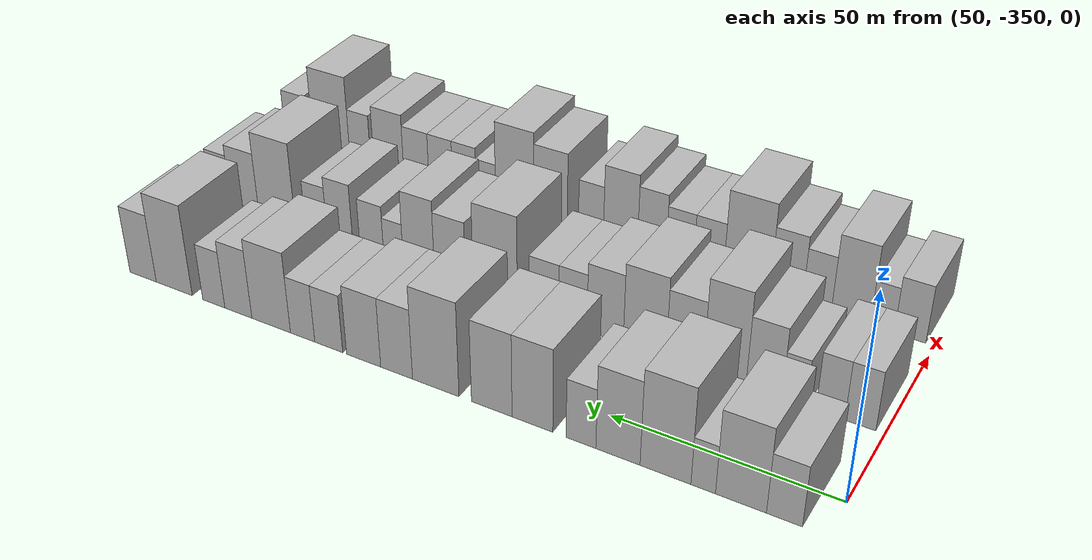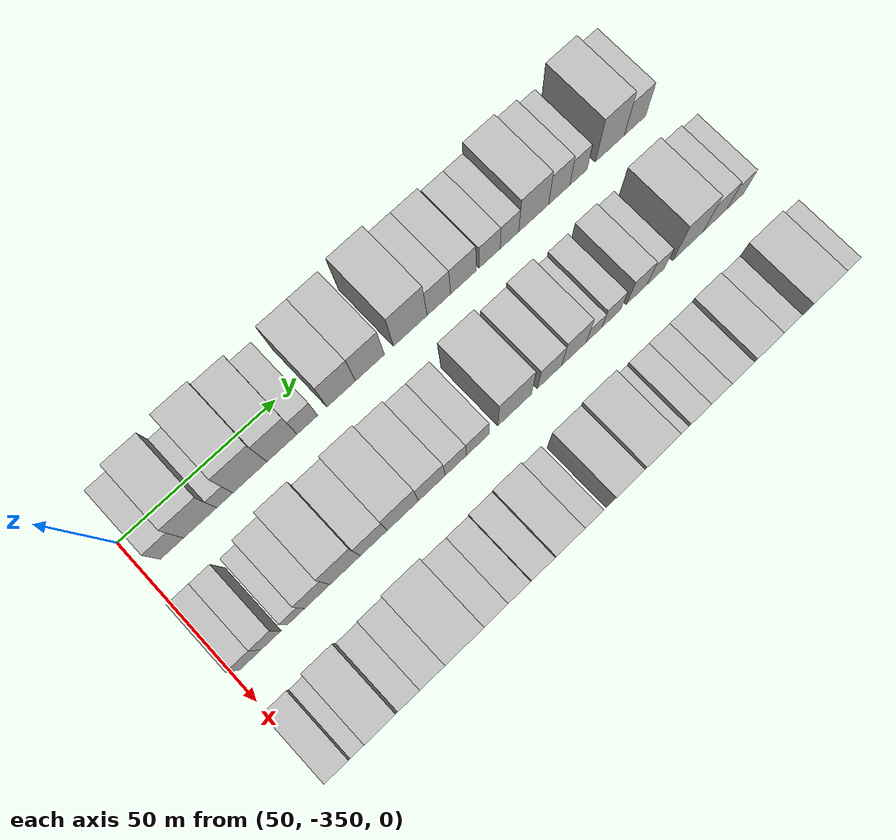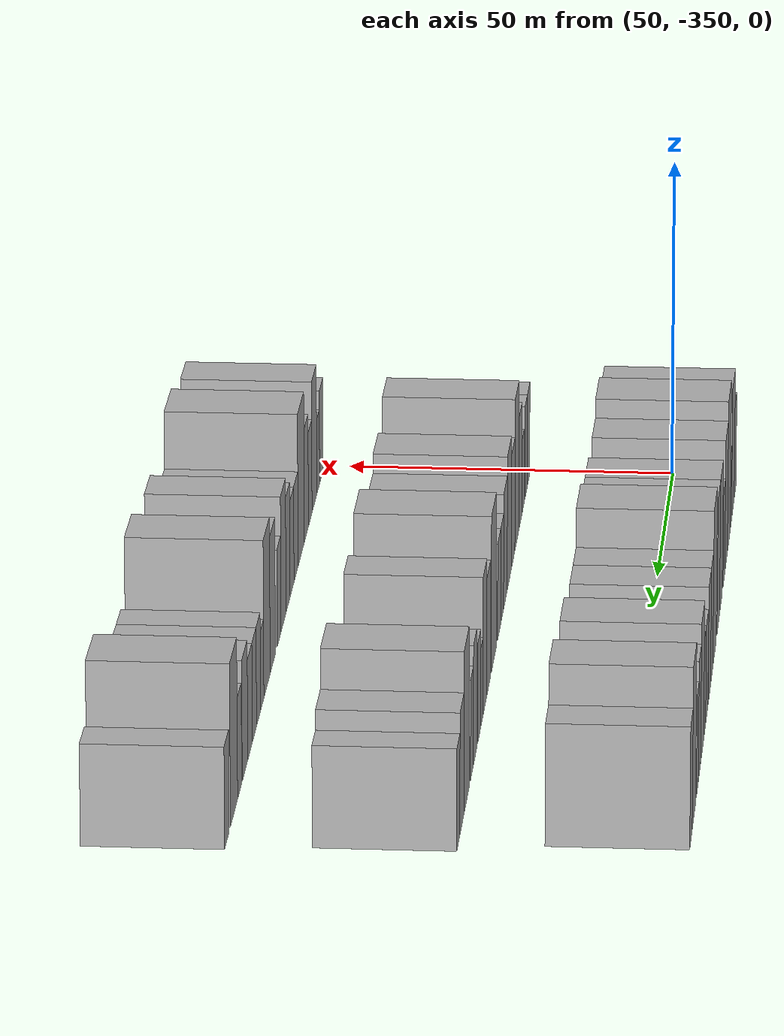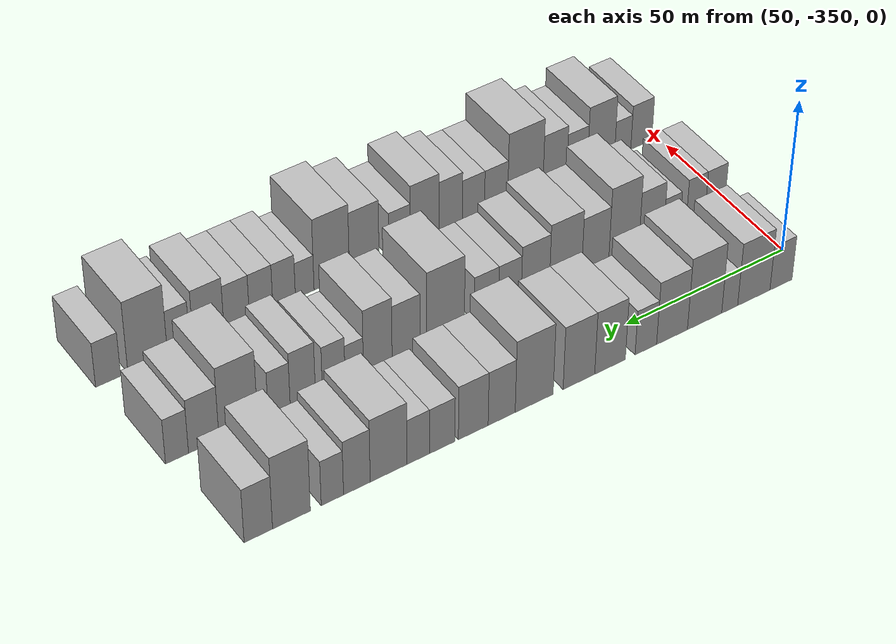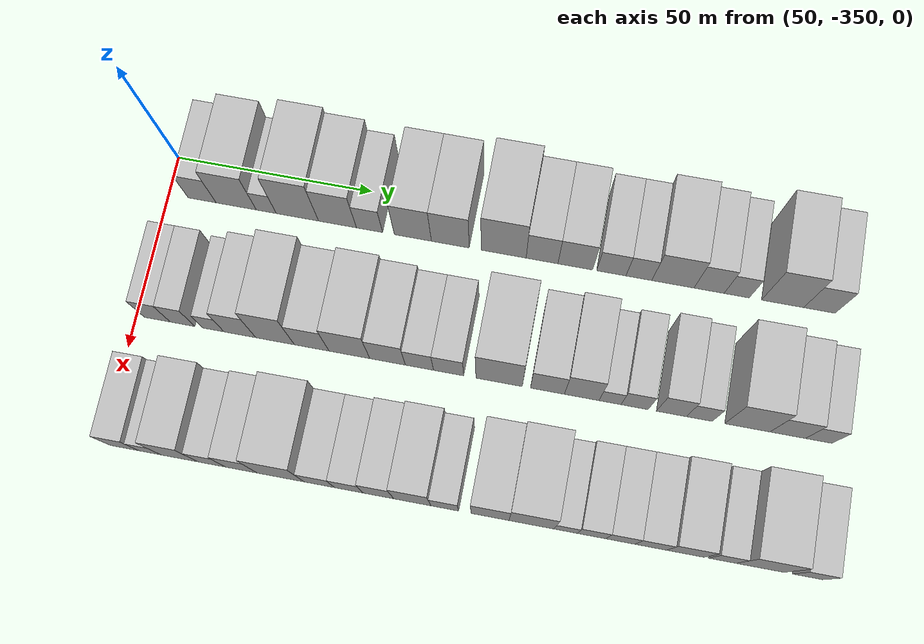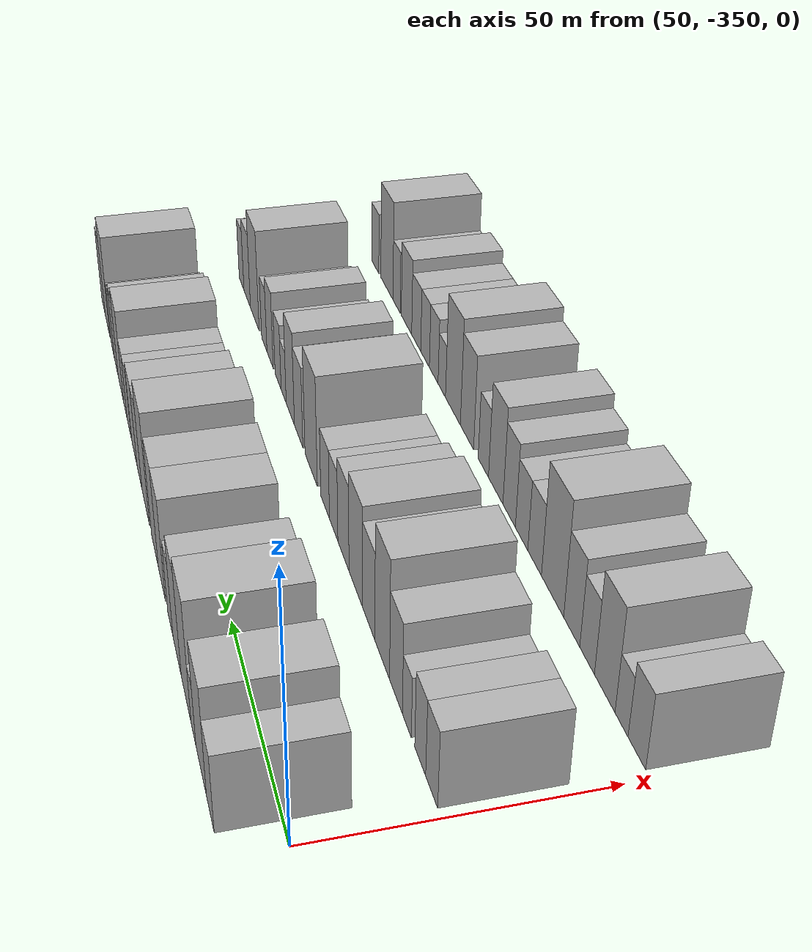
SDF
<sdf version="1.6">
 <world name="default">
  <model name="building_1">
   <static>1</static>
   <pose>50.0000 -341.4122 0 0.000000 0.000000 0.000000</pose>
   <link name="link">
    <pose>0 0 7.50 0 0 0</pose>
    <collision name="collision"><geometry><box><size>20.0000 7.1757 15.0000</size></box></geometry></collision>
    <visual name="visual">
     <cast_shadows>0</cast_shadows>
     <geometry><box><size>20.0000 7.1757 15.0000</size></box></geometry>
     <material>
      <script>
       <uri>model://HANNAS_wall/materials/scripts</uri>
       <uri>model://HANNAS_wall/materials/textures</uri>
       <name>vrc/HANNAS_wall</name>
      </script>
     </material>
    </visual>
   </link>
  </model>
  <model name="building_2">
   <static>1</static>
   <pose>50.0000 -332.6353 0 0.000000 0.000000 0.000000</pose>
   <link name="link">
    <pose>0 0 10.50 0 0 0</pose>
    <collision name="collision"><geometry><box><size>20.0000 10.3781 21.0000</size></box></geometry></collision>
    <visual name="visual">
     <cast_shadows>0</cast_shadows>
     <geometry><box><size>20.0000 10.3781 21.0000</size></box></geometry>
     <material>
      <script>
       <uri>model://HANNAS_wall/materials/scripts</uri>
       <uri>model://HANNAS_wall/materials/textures</uri>
       <name>vrc/HANNAS_wall</name>
      </script>
     </material>
    </visual>
   </link>
  </model>
  <model name="building_3">
   <static>1</static>
   <pose>50.0000 -324.8922 0 0.000000 0.000000 0.000000</pose>
   <link name="link">
    <pose>0 0 6.00 0 0 0</pose>
    <collision name="collision"><geometry><box><size>20.0000 5.1081 12.0000</size></box></geometry></collision>
    <visual name="visual">
     <cast_shadows>0</cast_shadows>
     <geometry><box><size>20.0000 5.1081 12.0000</size></box></geometry>
     <material>
      <script>
       <uri>model://HANNAS_wall/materials/scripts</uri>
       <uri>model://HANNAS_wall/materials/textures</uri>
       <name>vrc/HANNAS_wall</name>
      </script>
     </material>
    </visual>
   </link>
  </model>
  <model name="building_4">
   <static>1</static>
   <pose>50.0000 -316.9242 0 0.000000 0.000000 0.000000</pose>
   <link name="link">
    <pose>0 0 12.00 0 0 0</pose>
    <collision name="collision"><geometry><box><size>20.0000 10.8280 24.0000</size></box></geometry></collision>
    <visual name="visual">
     <cast_shadows>0</cast_shadows>
     <geometry><box><size>20.0000 10.8280 24.0000</size></box></geometry>
     <material>
      <script>
       <uri>model://HANNAS_wall/materials/scripts</uri>
       <uri>model://HANNAS_wall/materials/textures</uri>
       <name>vrc/HANNAS_wall</name>
      </script>
     </material>
    </visual>
   </link>
  </model>
  <model name="building_5">
   <static>1</static>
   <pose>50.0000 -306.6787 0 0.000000 0.000000 0.000000</pose>
   <link name="link">
    <pose>0 0 10.50 0 0 0</pose>
    <collision name="collision"><geometry><box><size>20.0000 9.6630 21.0000</size></box></geometry></collision>
    <visual name="visual">
     <cast_shadows>0</cast_shadows>
     <geometry><box><size>20.0000 9.6630 21.0000</size></box></geometry>
     <material>
      <script>
       <uri>model://HANNAS_wall/materials/scripts</uri>
       <uri>model://HANNAS_wall/materials/textures</uri>
       <name>vrc/HANNAS_wall</name>
      </script>
     </material>
    </visual>
   </link>
  </model>
  <model name="building_6">
   <static>1</static>
   <pose>50.0000 -298.5172 0 0.000000 0.000000 0.000000</pose>
   <link name="link">
    <pose>0 0 7.50 0 0 0</pose>
    <collision name="collision"><geometry><box><size>20.0000 6.6600 15.0000</size></box></geometry></collision>
    <visual name="visual">
     <cast_shadows>0</cast_shadows>
     <geometry><box><size>20.0000 6.6600 15.0000</size></box></geometry>
     <material>
      <script>
       <uri>model://HANNAS_wall/materials/scripts</uri>
       <uri>model://HANNAS_wall/materials/textures</uri>
       <name>vrc/HANNAS_wall</name>
      </script>
     </material>
    </visual>
   </link>
  </model>
  <model name="building_7">
   <static>1</static>
   <pose>50.0000 -287.5001 0 0.000000 0.000000 0.000000</pose>
   <link name="link">
    <pose>0 0 10.50 0 0 0</pose>
    <collision name="collision"><geometry><box><size>20.0000 9.3741 21.0000</size></box></geometry></collision>
    <visual name="visual">
     <cast_shadows>0</cast_shadows>
     <geometry><box><size>20.0000 9.3741 21.0000</size></box></geometry>
     <material>
      <script>
       <uri>model://HANNAS_wall/materials/scripts</uri>
       <uri>model://HANNAS_wall/materials/textures</uri>
       <name>vrc/HANNAS_wall</name>
      </script>
     </material>
    </visual>
   </link>
  </model>
  <model name="building_8">
   <static>1</static>
   <pose>50.0000 -278.0245 0 0.000000 0.000000 0.000000</pose>
   <link name="link">
    <pose>0 0 10.50 0 0 0</pose>
    <collision name="collision"><geometry><box><size>20.0000 9.5772 21.0000</size></box></geometry></collision>
    <visual name="visual">
     <cast_shadows>0</cast_shadows>
     <geometry><box><size>20.0000 9.5772 21.0000</size></box></geometry>
     <material>
      <script>
       <uri>model://HANNAS_wall/materials/scripts</uri>
       <uri>model://HANNAS_wall/materials/textures</uri>
       <name>vrc/HANNAS_wall</name>
      </script>
     </material>
    </visual>
   </link>
  </model>
  <model name="building_9">
   <static>1</static>
   <pose>50.0000 -264.5718 0 0.000000 0.000000 0.000000</pose>
   <link name="link">
    <pose>0 0 12.00 0 0 0</pose>
    <collision name="collision"><geometry><box><size>20.0000 11.3282 24.0000</size></box></geometry></collision>
    <visual name="visual">
     <cast_shadows>0</cast_shadows>
     <geometry><box><size>20.0000 11.3282 24.0000</size></box></geometry>
     <material>
      <script>
       <uri>model://HANNAS_wall/materials/scripts</uri>
       <uri>model://HANNAS_wall/materials/textures</uri>
       <name>vrc/HANNAS_wall</name>
      </script>
     </material>
    </visual>
   </link>
  </model>
  <model name="building_10">
   <static>1</static>
   <pose>50.0000 -254.9156 0 0.000000 0.000000 0.000000</pose>
   <link name="link">
    <pose>0 0 9.00 0 0 0</pose>
    <collision name="collision"><geometry><box><size>20.0000 7.9842 18.0000</size></box></geometry></collision>
    <visual name="visual">
     <cast_shadows>0</cast_shadows>
     <geometry><box><size>20.0000 7.9842 18.0000</size></box></geometry>
     <material>
      <script>
       <uri>model://HANNAS_wall/materials/scripts</uri>
       <uri>model://HANNAS_wall/materials/textures</uri>
       <name>vrc/HANNAS_wall</name>
      </script>
     </material>
    </visual>
   </link>
  </model>
  <model name="building_11">
   <static>1</static>
   <pose>50.0000 -246.5687 0 0.000000 0.000000 0.000000</pose>
   <link name="link">
    <pose>0 0 9.00 0 0 0</pose>
    <collision name="collision"><geometry><box><size>20.0000 8.7096 18.0000</size></box></geometry></collision>
    <visual name="visual">
     <cast_shadows>0</cast_shadows>
     <geometry><box><size>20.0000 8.7096 18.0000</size></box></geometry>
     <material>
      <script>
       <uri>model://HANNAS_wall/materials/scripts</uri>
       <uri>model://HANNAS_wall/materials/textures</uri>
       <name>vrc/HANNAS_wall</name>
      </script>
     </material>
    </visual>
   </link>
  </model>
  <model name="building_12">
   <static>1</static>
   <pose>50.0000 -237.5561 0 0.000000 0.000000 0.000000</pose>
   <link name="link">
    <pose>0 0 7.50 0 0 0</pose>
    <collision name="collision"><geometry><box><size>20.0000 7.3157 15.0000</size></box></geometry></collision>
    <visual name="visual">
     <cast_shadows>0</cast_shadows>
     <geometry><box><size>20.0000 7.3157 15.0000</size></box></geometry>
     <material>
      <script>
       <uri>model://HANNAS_wall/materials/scripts</uri>
       <uri>model://HANNAS_wall/materials/textures</uri>
       <name>vrc/HANNAS_wall</name>
      </script>
     </material>
    </visual>
   </link>
  </model>
  <model name="building_13">
   <static>1</static>
   <pose>50.0000 -230.6666 0 0.000000 0.000000 0.000000</pose>
   <link name="link">
    <pose>0 0 7.50 0 0 0</pose>
    <collision name="collision"><geometry><box><size>20.0000 6.4633 15.0000</size></box></geometry></collision>
    <visual name="visual">
     <cast_shadows>0</cast_shadows>
     <geometry><box><size>20.0000 6.4633 15.0000</size></box></geometry>
     <material>
      <script>
       <uri>model://HANNAS_wall/materials/scripts</uri>
       <uri>model://HANNAS_wall/materials/textures</uri>
       <name>vrc/HANNAS_wall</name>
      </script>
     </material>
    </visual>
   </link>
  </model>
  <model name="building_14">
   <static>1</static>
   <pose>50.0000 -222.1933 0 0.000000 0.000000 0.000000</pose>
   <link name="link">
    <pose>0 0 10.50 0 0 0</pose>
    <collision name="collision"><geometry><box><size>20.0000 10.4833 21.0000</size></box></geometry></collision>
    <visual name="visual">
     <cast_shadows>0</cast_shadows>
     <geometry><box><size>20.0000 10.4833 21.0000</size></box></geometry>
     <material>
      <script>
       <uri>model://HANNAS_wall/materials/scripts</uri>
       <uri>model://HANNAS_wall/materials/textures</uri>
       <name>vrc/HANNAS_wall</name>
      </script>
     </material>
    </visual>
   </link>
  </model>
  <model name="building_15">
   <static>1</static>
   <pose>50.0000 -213.2022 0 0.000000 0.000000 0.000000</pose>
   <link name="link">
    <pose>0 0 9.00 0 0 0</pose>
    <collision name="collision"><geometry><box><size>20.0000 7.4988 18.0000</size></box></geometry></collision>
    <visual name="visual">
     <cast_shadows>0</cast_shadows>
     <geometry><box><size>20.0000 7.4988 18.0000</size></box></geometry>
     <material>
      <script>
       <uri>model://HANNAS_wall/materials/scripts</uri>
       <uri>model://HANNAS_wall/materials/textures</uri>
       <name>vrc/HANNAS_wall</name>
      </script>
     </material>
    </visual>
   </link>
  </model>
  <model name="building_16">
   <static>1</static>
   <pose>50.0000 -206.3349 0 0.000000 0.000000 0.000000</pose>
   <link name="link">
    <pose>0 0 7.50 0 0 0</pose>
    <collision name="collision"><geometry><box><size>20.0000 6.2358 15.0000</size></box></geometry></collision>
    <visual name="visual">
     <cast_shadows>0</cast_shadows>
     <geometry><box><size>20.0000 6.2358 15.0000</size></box></geometry>
     <material>
      <script>
       <uri>model://HANNAS_wall/materials/scripts</uri>
       <uri>model://HANNAS_wall/materials/textures</uri>
       <name>vrc/HANNAS_wall</name>
      </script>
     </material>
    </visual>
   </link>
  </model>
  <model name="building_17">
   <static>1</static>
   <pose>50.0000 -195.0104 0 0.000000 0.000000 0.000000</pose>
   <link name="link">
    <pose>0 0 12.00 0 0 0</pose>
    <collision name="collision"><geometry><box><size>20.0000 10.4131 24.0000</size></box></geometry></collision>
    <visual name="visual">
     <cast_shadows>0</cast_shadows>
     <geometry><box><size>20.0000 10.4131 24.0000</size></box></geometry>
     <material>
      <script>
       <uri>model://HANNAS_wall/materials/scripts</uri>
       <uri>model://HANNAS_wall/materials/textures</uri>
       <name>vrc/HANNAS_wall</name>
      </script>
     </material>
    </visual>
   </link>
  </model>
  <model name="building_18">
   <static>1</static>
   <pose>50.0000 -185.9215 0 0.000000 0.000000 0.000000</pose>
   <link name="link">
    <pose>0 0 9.00 0 0 0</pose>
    <collision name="collision"><geometry><box><size>20.0000 7.7647 18.0000</size></box></geometry></collision>
    <visual name="visual">
     <cast_shadows>0</cast_shadows>
     <geometry><box><size>20.0000 7.7647 18.0000</size></box></geometry>
     <material>
      <script>
       <uri>model://HANNAS_wall/materials/scripts</uri>
       <uri>model://HANNAS_wall/materials/textures</uri>
       <name>vrc/HANNAS_wall</name>
      </script>
     </material>
    </visual>
   </link>
  </model>
  <model name="building_76">
   <static>1</static>
   <pose>82.0000 -344.7429 0 0.000000 0.000000 0.000000</pose>
   <link name="link">
    <pose>0 0 7.50 0 0 0</pose>
    <collision name="collision"><geometry><box><size>20.0000 6.5141 15.0000</size></box></geometry></collision>
    <visual name="visual">
     <cast_shadows>0</cast_shadows>
     <geometry><box><size>20.0000 6.5141 15.0000</size></box></geometry>
     <material>
      <script>
       <uri>model://HANNAS_wall/materials/scripts</uri>
       <uri>model://HANNAS_wall/materials/textures</uri>
       <name>vrc/HANNAS_wall</name>
      </script>
     </material>
    </visual>
   </link>
  </model>
  <model name="building_77">
   <static>1</static>
   <pose>82.0000 -338.4000 0 0.000000 0.000000 0.000000</pose>
   <link name="link">
    <pose>0 0 7.50 0 0 0</pose>
    <collision name="collision"><geometry><box><size>20.0000 6.1718 15.0000</size></box></geometry></collision>
    <visual name="visual">
     <cast_shadows>0</cast_shadows>
     <geometry><box><size>20.0000 6.1718 15.0000</size></box></geometry>
     <material>
      <script>
       <uri>model://HANNAS_wall/materials/scripts</uri>
       <uri>model://HANNAS_wall/materials/textures</uri>
       <name>vrc/HANNAS_wall</name>
      </script>
     </material>
    </visual>
   </link>
  </model>
  <model name="building_78">
   <static>1</static>
   <pose>82.0000 -330.6525 0 0.000000 0.000000 0.000000</pose>
   <link name="link">
    <pose>0 0 6.00 0 0 0</pose>
    <collision name="collision"><geometry><box><size>20.0000 5.3231 12.0000</size></box></geometry></collision>
    <visual name="visual">
     <cast_shadows>0</cast_shadows>
     <geometry><box><size>20.0000 5.3231 12.0000</size></box></geometry>
     <material>
      <script>
       <uri>model://HANNAS_wall/materials/scripts</uri>
       <uri>model://HANNAS_wall/materials/textures</uri>
       <name>vrc/HANNAS_wall</name>
      </script>
     </material>
    </visual>
   </link>
  </model>
  <model name="building_79">
   <static>1</static>
   <pose>82.0000 -324.0066 0 0.000000 0.000000 0.000000</pose>
   <link name="link">
    <pose>0 0 9.00 0 0 0</pose>
    <collision name="collision"><geometry><box><size>20.0000 7.9687 18.0000</size></box></geometry></collision>
    <visual name="visual">
     <cast_shadows>0</cast_shadows>
     <geometry><box><size>20.0000 7.9687 18.0000</size></box></geometry>
     <material>
      <script>
       <uri>model://HANNAS_wall/materials/scripts</uri>
       <uri>model://HANNAS_wall/materials/textures</uri>
       <name>vrc/HANNAS_wall</name>
      </script>
     </material>
    </visual>
   </link>
  </model>
  <model name="building_80">
   <static>1</static>
   <pose>82.0000 -315.2025 0 0.000000 0.000000 0.000000</pose>
   <link name="link">
    <pose>0 0 12.00 0 0 0</pose>
    <collision name="collision"><geometry><box><size>20.0000 9.6396 24.0000</size></box></geometry></collision>
    <visual name="visual">
     <cast_shadows>0</cast_shadows>
     <geometry><box><size>20.0000 9.6396 24.0000</size></box></geometry>
     <material>
      <script>
       <uri>model://HANNAS_wall/materials/scripts</uri>
       <uri>model://HANNAS_wall/materials/textures</uri>
       <name>vrc/HANNAS_wall</name>
      </script>
     </material>
    </visual>
   </link>
  </model>
  <model name="building_81">
   <static>1</static>
   <pose>82.0000 -306.0890 0 0.000000 0.000000 0.000000</pose>
   <link name="link">
    <pose>0 0 9.00 0 0 0</pose>
    <collision name="collision"><geometry><box><size>20.0000 8.5875 18.0000</size></box></geometry></collision>
    <visual name="visual">
     <cast_shadows>0</cast_shadows>
     <geometry><box><size>20.0000 8.5875 18.0000</size></box></geometry>
     <material>
      <script>
       <uri>model://HANNAS_wall/materials/scripts</uri>
       <uri>model://HANNAS_wall/materials/textures</uri>
       <name>vrc/HANNAS_wall</name>
      </script>
     </material>
    </visual>
   </link>
  </model>
  <model name="building_82">
   <static>1</static>
   <pose>82.0000 -296.7277 0 0.000000 0.000000 0.000000</pose>
   <link name="link">
    <pose>0 0 10.50 0 0 0</pose>
    <collision name="collision"><geometry><box><size>20.0000 10.1350 21.0000</size></box></geometry></collision>
    <visual name="visual">
     <cast_shadows>0</cast_shadows>
     <geometry><box><size>20.0000 10.1350 21.0000</size></box></geometry>
     <material>
      <script>
       <uri>model://HANNAS_wall/materials/scripts</uri>
       <uri>model://HANNAS_wall/materials/textures</uri>
       <name>vrc/HANNAS_wall</name>
      </script>
     </material>
    </visual>
   </link>
  </model>
  <model name="building_83">
   <static>1</static>
   <pose>82.0000 -287.2749 0 0.000000 0.000000 0.000000</pose>
   <link name="link">
    <pose>0 0 9.00 0 0 0</pose>
    <collision name="collision"><geometry><box><size>20.0000 8.7707 18.0000</size></box></geometry></collision>
    <visual name="visual">
     <cast_shadows>0</cast_shadows>
     <geometry><box><size>20.0000 8.7707 18.0000</size></box></geometry>
     <material>
      <script>
       <uri>model://HANNAS_wall/materials/scripts</uri>
       <uri>model://HANNAS_wall/materials/textures</uri>
       <name>vrc/HANNAS_wall</name>
      </script>
     </material>
    </visual>
   </link>
  </model>
  <model name="building_84">
   <static>1</static>
   <pose>82.0000 -279.4151 0 0.000000 0.000000 0.000000</pose>
   <link name="link">
    <pose>0 0 7.50 0 0 0</pose>
    <collision name="collision"><geometry><box><size>20.0000 6.9489 15.0000</size></box></geometry></collision>
    <visual name="visual">
     <cast_shadows>0</cast_shadows>
     <geometry><box><size>20.0000 6.9489 15.0000</size></box></geometry>
     <material>
      <script>
       <uri>model://HANNAS_wall/materials/scripts</uri>
       <uri>model://HANNAS_wall/materials/textures</uri>
       <name>vrc/HANNAS_wall</name>
      </script>
     </material>
    </visual>
   </link>
  </model>
  <model name="building_85">
   <static>1</static>
   <pose>82.0000 -272.2256 0 0.000000 0.000000 0.000000</pose>
   <link name="link">
    <pose>0 0 7.50 0 0 0</pose>
    <collision name="collision"><geometry><box><size>20.0000 7.4301 15.0000</size></box></geometry></collision>
    <visual name="visual">
     <cast_shadows>0</cast_shadows>
     <geometry><box><size>20.0000 7.4301 15.0000</size></box></geometry>
     <material>
      <script>
       <uri>model://HANNAS_wall/materials/scripts</uri>
       <uri>model://HANNAS_wall/materials/textures</uri>
       <name>vrc/HANNAS_wall</name>
      </script>
     </material>
    </visual>
   </link>
  </model>
  <model name="building_86">
   <static>1</static>
   <pose>82.0000 -259.8322 0 0.000000 0.000000 0.000000</pose>
   <link name="link">
    <pose>0 0 12.00 0 0 0</pose>
    <collision name="collision"><geometry><box><size>20.0000 11.3568 24.0000</size></box></geometry></collision>
    <visual name="visual">
     <cast_shadows>0</cast_shadows>
     <geometry><box><size>20.0000 11.3568 24.0000</size></box></geometry>
     <material>
      <script>
       <uri>model://HANNAS_wall/materials/scripts</uri>
       <uri>model://HANNAS_wall/materials/textures</uri>
       <name>vrc/HANNAS_wall</name>
      </script>
     </material>
    </visual>
   </link>
  </model>
  <model name="building_87">
   <static>1</static>
   <pose>82.0000 -248.0134 0 0.000000 0.000000 0.000000</pose>
   <link name="link">
    <pose>0 0 9.00 0 0 0</pose>
    <collision name="collision"><geometry><box><size>20.0000 8.2809 18.0000</size></box></geometry></collision>
    <visual name="visual">
     <cast_shadows>0</cast_shadows>
     <geometry><box><size>20.0000 8.2809 18.0000</size></box></geometry>
     <material>
      <script>
       <uri>model://HANNAS_wall/materials/scripts</uri>
       <uri>model://HANNAS_wall/materials/textures</uri>
       <name>vrc/HANNAS_wall</name>
      </script>
     </material>
    </visual>
   </link>
  </model>
  <model name="building_88">
   <static>1</static>
   <pose>82.0000 -239.6542 0 0.000000 0.000000 0.000000</pose>
   <link name="link">
    <pose>0 0 10.50 0 0 0</pose>
    <collision name="collision"><geometry><box><size>20.0000 8.4374 21.0000</size></box></geometry></collision>
    <visual name="visual">
     <cast_shadows>0</cast_shadows>
     <geometry><box><size>20.0000 8.4374 21.0000</size></box></geometry>
     <material>
      <script>
       <uri>model://HANNAS_wall/materials/scripts</uri>
       <uri>model://HANNAS_wall/materials/textures</uri>
       <name>vrc/HANNAS_wall</name>
      </script>
     </material>
    </visual>
   </link>
  </model>
  <model name="building_89">
   <static>1</static>
   <pose>82.0000 -232.7528 0 0.000000 0.000000 0.000000</pose>
   <link name="link">
    <pose>0 0 6.00 0 0 0</pose>
    <collision name="collision"><geometry><box><size>20.0000 5.3654 12.0000</size></box></geometry></collision>
    <visual name="visual">
     <cast_shadows>0</cast_shadows>
     <geometry><box><size>20.0000 5.3654 12.0000</size></box></geometry>
     <material>
      <script>
       <uri>model://HANNAS_wall/materials/scripts</uri>
       <uri>model://HANNAS_wall/materials/textures</uri>
       <name>vrc/HANNAS_wall</name>
      </script>
     </material>
    </visual>
   </link>
  </model>
  <model name="building_90">
   <static>1</static>
   <pose>82.0000 -226.7700 0 0.000000 0.000000 0.000000</pose>
   <link name="link">
    <pose>0 0 7.50 0 0 0</pose>
    <collision name="collision"><geometry><box><size>20.0000 6.6002 15.0000</size></box></geometry></collision>
    <visual name="visual">
     <cast_shadows>0</cast_shadows>
     <geometry><box><size>20.0000 6.6002 15.0000</size></box></geometry>
     <material>
      <script>
       <uri>model://HANNAS_wall/materials/scripts</uri>
       <uri>model://HANNAS_wall/materials/textures</uri>
       <name>vrc/HANNAS_wall</name>
      </script>
     </material>
    </visual>
   </link>
  </model>
  <model name="building_91">
   <static>1</static>
   <pose>82.0000 -217.8444 0 0.000000 0.000000 0.000000</pose>
   <link name="link">
    <pose>0 0 9.00 0 0 0</pose>
    <collision name="collision"><geometry><box><size>20.0000 7.2511 18.0000</size></box></geometry></collision>
    <visual name="visual">
     <cast_shadows>0</cast_shadows>
     <geometry><box><size>20.0000 7.2511 18.0000</size></box></geometry>
     <material>
      <script>
       <uri>model://HANNAS_wall/materials/scripts</uri>
       <uri>model://HANNAS_wall/materials/textures</uri>
       <name>vrc/HANNAS_wall</name>
      </script>
     </material>
    </visual>
   </link>
  </model>
  <model name="building_92">
   <static>1</static>
   <pose>82.0000 -211.0838 0 0.000000 0.000000 0.000000</pose>
   <link name="link">
    <pose>0 0 7.50 0 0 0</pose>
    <collision name="collision"><geometry><box><size>20.0000 6.2702 15.0000</size></box></geometry></collision>
    <visual name="visual">
     <cast_shadows>0</cast_shadows>
     <geometry><box><size>20.0000 6.2702 15.0000</size></box></geometry>
     <material>
      <script>
       <uri>model://HANNAS_wall/materials/scripts</uri>
       <uri>model://HANNAS_wall/materials/textures</uri>
       <name>vrc/HANNAS_wall</name>
      </script>
     </material>
    </visual>
   </link>
  </model>
  <model name="building_93">
   <static>1</static>
   <pose>82.0000 -199.5078 0 0.000000 0.000000 0.000000</pose>
   <link name="link">
    <pose>0 0 12.00 0 0 0</pose>
    <collision name="collision"><geometry><box><size>20.0000 10.8818 24.0000</size></box></geometry></collision>
    <visual name="visual">
     <cast_shadows>0</cast_shadows>
     <geometry><box><size>20.0000 10.8818 24.0000</size></box></geometry>
     <material>
      <script>
       <uri>model://HANNAS_wall/materials/scripts</uri>
       <uri>model://HANNAS_wall/materials/textures</uri>
       <name>vrc/HANNAS_wall</name>
      </script>
     </material>
    </visual>
   </link>
  </model>
  <model name="building_94">
   <static>1</static>
   <pose>82.0000 -189.8220 0 0.000000 0.000000 0.000000</pose>
   <link name="link">
    <pose>0 0 9.00 0 0 0</pose>
    <collision name="collision"><geometry><box><size>20.0000 8.4897 18.0000</size></box></geometry></collision>
    <visual name="visual">
     <cast_shadows>0</cast_shadows>
     <geometry><box><size>20.0000 8.4897 18.0000</size></box></geometry>
     <material>
      <script>
       <uri>model://HANNAS_wall/materials/scripts</uri>
       <uri>model://HANNAS_wall/materials/textures</uri>
       <name>vrc/HANNAS_wall</name>
      </script>
     </material>
    </visual>
   </link>
  </model>
  <model name="building_95">
   <static>1</static>
   <pose>82.0000 -182.3976 0 0.000000 0.000000 0.000000</pose>
   <link name="link">
    <pose>0 0 7.50 0 0 0</pose>
    <collision name="collision"><geometry><box><size>20.0000 6.3591 15.0000</size></box></geometry></collision>
    <visual name="visual">
     <cast_shadows>0</cast_shadows>
     <geometry><box><size>20.0000 6.3591 15.0000</size></box></geometry>
     <material>
      <script>
       <uri>model://HANNAS_wall/materials/scripts</uri>
       <uri>model://HANNAS_wall/materials/textures</uri>
       <name>vrc/HANNAS_wall</name>
      </script>
     </material>
    </visual>
   </link>
  </model>
  <model name="building_154">
   <static>1</static>
   <pose>114.0000 -344.4842 0 0.000000 0.000000 0.000000</pose>
   <link name="link">
    <pose>0 0 7.50 0 0 0</pose>
    <collision name="collision"><geometry><box><size>20.0000 7.0316 15.0000</size></box></geometry></collision>
    <visual name="visual">
     <cast_shadows>0</cast_shadows>
     <geometry><box><size>20.0000 7.0316 15.0000</size></box></geometry>
     <material>
      <script>
       <uri>model://HANNAS_wall/materials/scripts</uri>
       <uri>model://HANNAS_wall/materials/textures</uri>
       <name>vrc/HANNAS_wall</name>
      </script>
     </material>
    </visual>
   </link>
  </model>
  <model name="building_155">
   <static>1</static>
   <pose>114.0000 -338.2651 0 0.000000 0.000000 0.000000</pose>
   <link name="link">
    <pose>0 0 6.00 0 0 0</pose>
    <collision name="collision"><geometry><box><size>20.0000 5.4066 12.0000</size></box></geometry></collision>
    <visual name="visual">
     <cast_shadows>0</cast_shadows>
     <geometry><box><size>20.0000 5.4066 12.0000</size></box></geometry>
     <material>
      <script>
       <uri>model://HANNAS_wall/materials/scripts</uri>
       <uri>model://HANNAS_wall/materials/textures</uri>
       <name>vrc/HANNAS_wall</name>
      </script>
     </material>
    </visual>
   </link>
  </model>
  <model name="building_156">
   <static>1</static>
   <pose>114.0000 -331.0794 0 0.000000 0.000000 0.000000</pose>
   <link name="link">
    <pose>0 0 10.50 0 0 0</pose>
    <collision name="collision"><geometry><box><size>20.0000 8.9648 21.0000</size></box></geometry></collision>
    <visual name="visual">
     <cast_shadows>0</cast_shadows>
     <geometry><box><size>20.0000 8.9648 21.0000</size></box></geometry>
     <material>
      <script>
       <uri>model://HANNAS_wall/materials/scripts</uri>
       <uri>model://HANNAS_wall/materials/textures</uri>
       <name>vrc/HANNAS_wall</name>
      </script>
     </material>
    </visual>
   </link>
  </model>
  <model name="building_157">
   <static>1</static>
   <pose>114.0000 -323.2217 0 0.000000 0.000000 0.000000</pose>
   <link name="link">
    <pose>0 0 7.50 0 0 0</pose>
    <collision name="collision"><geometry><box><size>20.0000 6.7507 15.0000</size></box></geometry></collision>
    <visual name="visual">
     <cast_shadows>0</cast_shadows>
     <geometry><box><size>20.0000 6.7507 15.0000</size></box></geometry>
     <material>
      <script>
       <uri>model://HANNAS_wall/materials/scripts</uri>
       <uri>model://HANNAS_wall/materials/textures</uri>
       <name>vrc/HANNAS_wall</name>
      </script>
     </material>
    </visual>
   </link>
  </model>
  <model name="building_158">
   <static>1</static>
   <pose>114.0000 -315.9867 0 0.000000 0.000000 0.000000</pose>
   <link name="link">
    <pose>0 0 9.00 0 0 0</pose>
    <collision name="collision"><geometry><box><size>20.0000 7.7193 18.0000</size></box></geometry></collision>
    <visual name="visual">
     <cast_shadows>0</cast_shadows>
     <geometry><box><size>20.0000 7.7193 18.0000</size></box></geometry>
     <material>
      <script>
       <uri>model://HANNAS_wall/materials/scripts</uri>
       <uri>model://HANNAS_wall/materials/textures</uri>
       <name>vrc/HANNAS_wall</name>
      </script>
     </material>
    </visual>
   </link>
  </model>
  <model name="building_159">
   <static>1</static>
   <pose>114.0000 -306.4549 0 0.000000 0.000000 0.000000</pose>
   <link name="link">
    <pose>0 0 12.00 0 0 0</pose>
    <collision name="collision"><geometry><box><size>20.0000 11.3443 24.0000</size></box></geometry></collision>
    <visual name="visual">
     <cast_shadows>0</cast_shadows>
     <geometry><box><size>20.0000 11.3443 24.0000</size></box></geometry>
     <material>
      <script>
       <uri>model://HANNAS_wall/materials/scripts</uri>
       <uri>model://HANNAS_wall/materials/textures</uri>
       <name>vrc/HANNAS_wall</name>
      </script>
     </material>
    </visual>
   </link>
  </model>
  <model name="building_160">
   <static>1</static>
   <pose>114.0000 -297.0921 0 0.000000 0.000000 0.000000</pose>
   <link name="link">
    <pose>0 0 7.50 0 0 0</pose>
    <collision name="collision"><geometry><box><size>20.0000 7.3812 15.0000</size></box></geometry></collision>
    <visual name="visual">
     <cast_shadows>0</cast_shadows>
     <geometry><box><size>20.0000 7.3812 15.0000</size></box></geometry>
     <material>
      <script>
       <uri>model://HANNAS_wall/materials/scripts</uri>
       <uri>model://HANNAS_wall/materials/textures</uri>
       <name>vrc/HANNAS_wall</name>
      </script>
     </material>
    </visual>
   </link>
  </model>
  <model name="building_161">
   <static>1</static>
   <pose>114.0000 -289.9155 0 0.000000 0.000000 0.000000</pose>
   <link name="link">
    <pose>0 0 7.50 0 0 0</pose>
    <collision name="collision"><geometry><box><size>20.0000 6.9719 15.0000</size></box></geometry></collision>
    <visual name="visual">
     <cast_shadows>0</cast_shadows>
     <geometry><box><size>20.0000 6.9719 15.0000</size></box></geometry>
     <material>
      <script>
       <uri>model://HANNAS_wall/materials/scripts</uri>
       <uri>model://HANNAS_wall/materials/textures</uri>
       <name>vrc/HANNAS_wall</name>
      </script>
     </material>
    </visual>
   </link>
  </model>
  <model name="building_162">
   <static>1</static>
   <pose>114.0000 -282.7675 0 0.000000 0.000000 0.000000</pose>
   <link name="link">
    <pose>0 0 9.00 0 0 0</pose>
    <collision name="collision"><geometry><box><size>20.0000 7.3241 18.0000</size></box></geometry></collision>
    <visual name="visual">
     <cast_shadows>0</cast_shadows>
     <geometry><box><size>20.0000 7.3241 18.0000</size></box></geometry>
     <material>
      <script>
       <uri>model://HANNAS_wall/materials/scripts</uri>
       <uri>model://HANNAS_wall/materials/textures</uri>
       <name>vrc/HANNAS_wall</name>
      </script>
     </material>
    </visual>
   </link>
  </model>
  <model name="building_163">
   <static>1</static>
   <pose>114.0000 -274.6653 0 0.000000 0.000000 0.000000</pose>
   <link name="link">
    <pose>0 0 10.50 0 0 0</pose>
    <collision name="collision"><geometry><box><size>20.0000 8.8803 21.0000</size></box></geometry></collision>
    <visual name="visual">
     <cast_shadows>0</cast_shadows>
     <geometry><box><size>20.0000 8.8803 21.0000</size></box></geometry>
     <material>
      <script>
       <uri>model://HANNAS_wall/materials/scripts</uri>
       <uri>model://HANNAS_wall/materials/textures</uri>
       <name>vrc/HANNAS_wall</name>
      </script>
     </material>
    </visual>
   </link>
  </model>
  <model name="building_164">
   <static>1</static>
   <pose>114.0000 -266.9102 0 0.000000 0.000000 0.000000</pose>
   <link name="link">
    <pose>0 0 7.50 0 0 0</pose>
    <collision name="collision"><geometry><box><size>20.0000 6.6299 15.0000</size></box></geometry></collision>
    <visual name="visual">
     <cast_shadows>0</cast_shadows>
     <geometry><box><size>20.0000 6.6299 15.0000</size></box></geometry>
     <material>
      <script>
       <uri>model://HANNAS_wall/materials/scripts</uri>
       <uri>model://HANNAS_wall/materials/textures</uri>
       <name>vrc/HANNAS_wall</name>
      </script>
     </material>
    </visual>
   </link>
  </model>
  <model name="building_165">
   <static>1</static>
   <pose>114.0000 -256.0822 0 0.000000 0.000000 0.000000</pose>
   <link name="link">
    <pose>0 0 10.50 0 0 0</pose>
    <collision name="collision"><geometry><box><size>20.0000 9.0263 21.0000</size></box></geometry></collision>
    <visual name="visual">
     <cast_shadows>0</cast_shadows>
     <geometry><box><size>20.0000 9.0263 21.0000</size></box></geometry>
     <material>
      <script>
       <uri>model://HANNAS_wall/materials/scripts</uri>
       <uri>model://HANNAS_wall/materials/textures</uri>
       <name>vrc/HANNAS_wall</name>
      </script>
     </material>
    </visual>
   </link>
  </model>
  <model name="building_166">
   <static>1</static>
   <pose>114.0000 -246.2399 0 0.000000 0.000000 0.000000</pose>
   <link name="link">
    <pose>0 0 12.00 0 0 0</pose>
    <collision name="collision"><geometry><box><size>20.0000 10.6581 24.0000</size></box></geometry></collision>
    <visual name="visual">
     <cast_shadows>0</cast_shadows>
     <geometry><box><size>20.0000 10.6581 24.0000</size></box></geometry>
     <material>
      <script>
       <uri>model://HANNAS_wall/materials/scripts</uri>
       <uri>model://HANNAS_wall/materials/textures</uri>
       <name>vrc/HANNAS_wall</name>
      </script>
     </material>
    </visual>
   </link>
  </model>
  <model name="building_167">
   <static>1</static>
   <pose>114.0000 -238.1301 0 0.000000 0.000000 0.000000</pose>
   <link name="link">
    <pose>0 0 6.00 0 0 0</pose>
    <collision name="collision"><geometry><box><size>20.0000 5.5616 12.0000</size></box></geometry></collision>
    <visual name="visual">
     <cast_shadows>0</cast_shadows>
     <geometry><box><size>20.0000 5.5616 12.0000</size></box></geometry>
     <material>
      <script>
       <uri>model://HANNAS_wall/materials/scripts</uri>
       <uri>model://HANNAS_wall/materials/textures</uri>
       <name>vrc/HANNAS_wall</name>
      </script>
     </material>
    </visual>
   </link>
  </model>
  <model name="building_168">
   <static>1</static>
   <pose>114.0000 -232.0074 0 0.000000 0.000000 0.000000</pose>
   <link name="link">
    <pose>0 0 7.50 0 0 0</pose>
    <collision name="collision"><geometry><box><size>20.0000 6.6838 15.0000</size></box></geometry></collision>
    <visual name="visual">
     <cast_shadows>0</cast_shadows>
     <geometry><box><size>20.0000 6.6838 15.0000</size></box></geometry>
     <material>
      <script>
       <uri>model://HANNAS_wall/materials/scripts</uri>
       <uri>model://HANNAS_wall/materials/textures</uri>
       <name>vrc/HANNAS_wall</name>
      </script>
     </material>
    </visual>
   </link>
  </model>
  <model name="building_169">
   <static>1</static>
   <pose>114.0000 -225.2144 0 0.000000 0.000000 0.000000</pose>
   <link name="link">
    <pose>0 0 7.50 0 0 0</pose>
    <collision name="collision"><geometry><box><size>20.0000 6.9022 15.0000</size></box></geometry></collision>
    <visual name="visual">
     <cast_shadows>0</cast_shadows>
     <geometry><box><size>20.0000 6.9022 15.0000</size></box></geometry>
     <material>
      <script>
       <uri>model://HANNAS_wall/materials/scripts</uri>
       <uri>model://HANNAS_wall/materials/textures</uri>
       <name>vrc/HANNAS_wall</name>
      </script>
     </material>
    </visual>
   </link>
  </model>
  <model name="building_170">
   <static>1</static>
   <pose>114.0000 -218.0385 0 0.000000 0.000000 0.000000</pose>
   <link name="link">
    <pose>0 0 7.50 0 0 0</pose>
    <collision name="collision"><geometry><box><size>20.0000 7.4496 15.0000</size></box></geometry></collision>
    <visual name="visual">
     <cast_shadows>0</cast_shadows>
     <geometry><box><size>20.0000 7.4496 15.0000</size></box></geometry>
     <material>
      <script>
       <uri>model://HANNAS_wall/materials/scripts</uri>
       <uri>model://HANNAS_wall/materials/textures</uri>
       <name>vrc/HANNAS_wall</name>
      </script>
     </material>
    </visual>
   </link>
  </model>
  <model name="building_171">
   <static>1</static>
   <pose>114.0000 -209.8580 0 0.000000 0.000000 0.000000</pose>
   <link name="link">
    <pose>0 0 9.00 0 0 0</pose>
    <collision name="collision"><geometry><box><size>20.0000 8.9115 18.0000</size></box></geometry></collision>
    <visual name="visual">
     <cast_shadows>0</cast_shadows>
     <geometry><box><size>20.0000 8.9115 18.0000</size></box></geometry>
     <material>
      <script>
       <uri>model://HANNAS_wall/materials/scripts</uri>
       <uri>model://HANNAS_wall/materials/textures</uri>
       <name>vrc/HANNAS_wall</name>
      </script>
     </material>
    </visual>
   </link>
  </model>
  <model name="building_172">
   <static>1</static>
   <pose>114.0000 -201.2146 0 0.000000 0.000000 0.000000</pose>
   <link name="link">
    <pose>0 0 7.50 0 0 0</pose>
    <collision name="collision"><geometry><box><size>20.0000 6.3753 15.0000</size></box></geometry></collision>
    <visual name="visual">
     <cast_shadows>0</cast_shadows>
     <geometry><box><size>20.0000 6.3753 15.0000</size></box></geometry>
     <material>
      <script>
       <uri>model://HANNAS_wall/materials/scripts</uri>
       <uri>model://HANNAS_wall/materials/textures</uri>
       <name>vrc/HANNAS_wall</name>
      </script>
     </material>
    </visual>
   </link>
  </model>
  <model name="building_173">
   <static>1</static>
   <pose>114.0000 -192.3879 0 0.000000 0.000000 0.000000</pose>
   <link name="link">
    <pose>0 0 12.00 0 0 0</pose>
    <collision name="collision"><geometry><box><size>20.0000 11.2781 24.0000</size></box></geometry></collision>
    <visual name="visual">
     <cast_shadows>0</cast_shadows>
     <geometry><box><size>20.0000 11.2781 24.0000</size></box></geometry>
     <material>
      <script>
       <uri>model://HANNAS_wall/materials/scripts</uri>
       <uri>model://HANNAS_wall/materials/textures</uri>
       <name>vrc/HANNAS_wall</name>
      </script>
     </material>
    </visual>
   </link>
  </model>
  <model name="building_174">
   <static>1</static>
   <pose>114.0000 -181.2237 0 0.000000 0.000000 0.000000</pose>
   <link name="link">
    <pose>0 0 7.50 0 0 0</pose>
    <collision name="collision"><geometry><box><size>20.0000 7.0501 15.0000</size></box></geometry></collision>
    <visual name="visual">
     <cast_shadows>0</cast_shadows>
     <geometry><box><size>20.0000 7.0501 15.0000</size></box></geometry>
     <material>
      <script>
       <uri>model://HANNAS_wall/materials/scripts</uri>
       <uri>model://HANNAS_wall/materials/textures</uri>
       <name>vrc/HANNAS_wall</name>
      </script>
     </material>
    </visual>
   </link>
  </model>
 </world>
</sdf>
